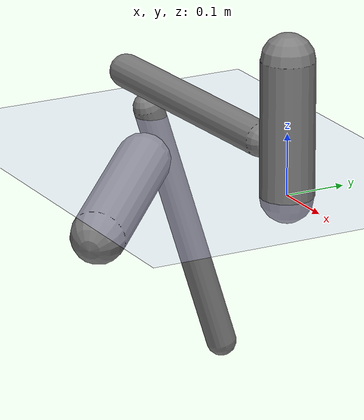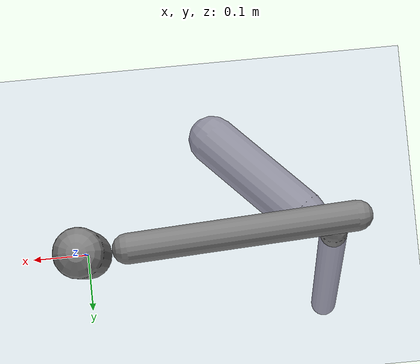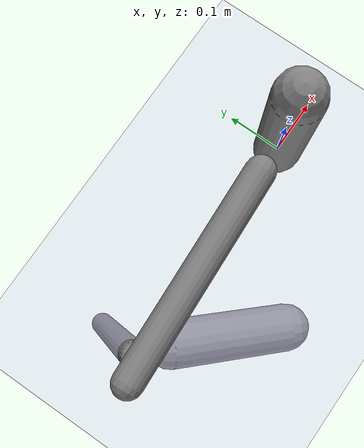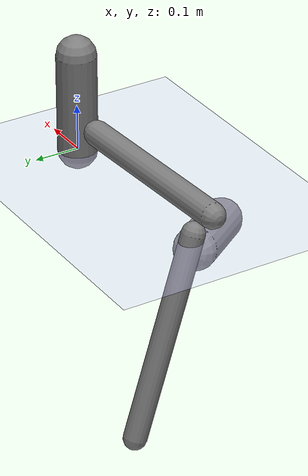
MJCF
<?xml version='1.0' encoding='UTF-8'?>
<mujoco model="robot_model">
  <worldbody>
    <light name="light" pos="0 -3 10" dir="0 0.5 -1" diffuse=".8 .8 .8" specular="0.1 0.1 0.1"/>
    <geom name="floor" type="plane" size="10.0 10.0 0.1" pos="0 0 0" rgba="0.8 0.8 1 1" contype="2" conaffinity="1"/>
    <body name="limb0" pos="0 0 0">
      <geom name="limb0_geom" type="capsule" fromto="0 0 0 0 0 0.21812207487885257" size="0.043411569227480976" density="615.38740748663" contype="1" conaffinity="2"/>
      <site type="sphere" size="0.01" name="limb0_site0" pos="-0.07509943732549561 -0.00380846131953035 0.06892766316608599" quat="0.7071067811865476 0.035812953632730245 -0.7061992865700869 0.0"/>
      <freejoint name="limb0_root"/>
      <body name="limb1" pos="-0.07509943732549561 -0.00380846131953035 0.06892766316608599" quat="0.7071067811865476 0.035812953632730245 -0.7061992865700869 0.0">
        <geom name="limb1_geom" type="capsule" fromto="0 0 0 0 0 0.4119779083954327" size="0.027784373909289378" density="1094.7449235337838" contype="1" conaffinity="2"/>
        <site type="sphere" size="0.01" name="limb1_site0" pos="-0.055205292946056035 0.014865191203883892 0.37244161342257465" quat="0.7071067811865476 -0.18385469641219343 -0.6827865337037485 0.0"/>
        <body name="limb2" pos="-0.055205292946056035 0.014865191203883892 0.37244161342257465" quat="0.7071067811865476 -0.18385469641219343 -0.6827865337037485 0.0">
          <geom name="limb2_geom" type="capsule" fromto="0 0 0 0 0 0.4580630838363408" size="0.02538728234438139" density="761.3297626595659" contype="1" conaffinity="2"/>
          <site type="sphere" size="0.01" name="limb2_site0" pos="-0.060974269919658486 -0.04390103120832494 0.0560157774024311" quat="0.7071067811865476 0.4131630873191158 -0.5738434135519346 0.0"/>
          <body name="limb3" pos="-0.060974269919658486 -0.04390103120832494 0.0560157774024311" quat="0.7071067811865476 0.4131630873191158 -0.5738434135519346 0.0">
            <geom name="limb3_geom" type="capsule" fromto="0 0 0 0 0 0.22696382562599393" size="0.04574701164571137" density="1136.4132070991554" contype="1" conaffinity="2"/>
            <joint name="joint_limb2_limb3_0" type="hinge" axis="1 0 0" range="-76.8184141901732 76.8184141901732" damping="5.0"/>
          </body>
          <joint name="joint_limb1_limb2_0" type="hinge" axis="1 0 0" range="-60.6612845033848 60.6612845033848" damping="5.0"/>
        </body>
        <joint name="joint_limb0_limb1_0" type="hinge" axis="0 1 0" range="-78.41870925995437 78.41870925995437" damping="5.0"/>
      </body>
    </body>
  </worldbody>
  <actuator>
    <position name="position_actuator_joint_limb0_limb1_0" joint="joint_limb0_limb1_0" gear="1.5881939679587131" inheritrange="1" forcerange="-5.960783523172352 5.960783523172352" forcelimited="true" kp="100.0"/>
    <position name="position_actuator_joint_limb1_limb2_0" joint="joint_limb1_limb2_0" gear="0.9597608262960533" inheritrange="1" forcerange="-3.7915189324161753 3.7915189324161753" forcelimited="true" kp="100.0"/>
    <position name="position_actuator_joint_limb2_limb3_0" joint="joint_limb2_limb3_0" gear="1.4426881968183625" inheritrange="1" forcerange="-10.757553982412052 10.757553982412052" forcelimited="true" kp="100.0"/>
  </actuator>
  <contact>
    <pair geom1="limb0_geom" geom2="limb1_geom"/>
    <pair geom1="limb1_geom" geom2="limb2_geom"/>
    <pair geom1="limb2_geom" geom2="limb3_geom"/>
  </contact>
</mujoco>
